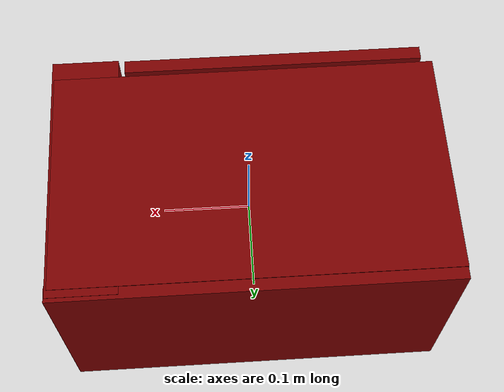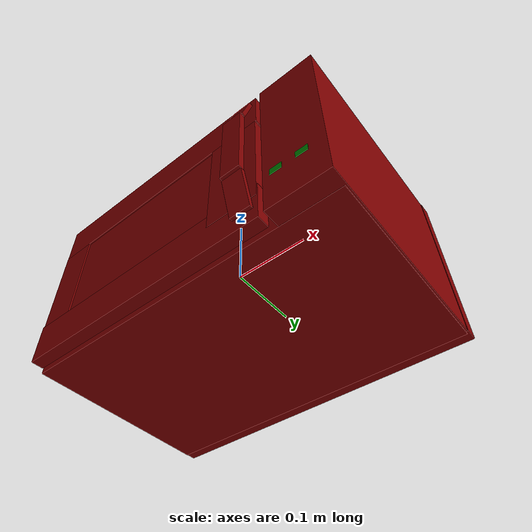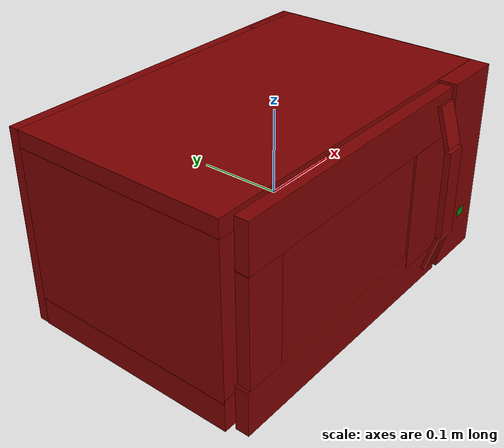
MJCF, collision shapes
<mujoco model="model">
  <compiler angle="radian"/>
  <asset>
    <mesh file="visuals/door.obj" name="door_vis"/>
    <mesh file="visuals/door_Clear.obj" name="door_Clear_vis"/>
    <mesh file="visuals/Body001.obj" name="Body001_vis"/>
    <mesh file="visuals/Disc001.obj" name="Disc001_vis"/>
    <texture file="visuals/T_BC001.png" name="Body001_material" type="2d"/>
    <material name="Body001_material" rgba="1 1 1 1.0" texture="Body001_material" shininess="0.4472135901451111" specular="0.3103448502657381"/>
    <texture file="visuals/T_BC001.png" name="door_material" type="2d"/>
    <material name="door_material" rgba="1 1 1 1.0" texture="door_material" shininess="0.4472135901451111" specular="0.3103448502657381"/>
    <material name="door_Clear_material" rgba="0.057967204600572586 0.057967204600572586 0.057967204600572586 0.800000011920929" shininess="0.5" specular="0.3103448502657381"/>
    <texture file="visuals/T_BC001.png" name="Disc001_material" type="2d"/>
    <material name="Disc001_material" rgba="1 1 1 1.0" texture="Disc001_material" shininess="0.4472135901451111" specular="0.3103448502657381"/>
  </asset>
  <default>
    <default class="visual">
      <geom conaffinity="0" contype="0" group="1" type="mesh"/>
    </default>
    <default class="collision">
      <geom group="0" rgba="0.5 0 0 0.5"/>
    </default>
    <default class="spawn">
      <geom group="0" rgba="1 1 1 0.5" contype="0" conaffinity="0"/>
      <site group="0" rgba="1 1 1 0.5"/>
    </default>
    <default class="region">
      <geom group="1" conaffinity="0" contype="0" rgba="0 1 0 0"/>
    </default>
  </default>
  <worldbody>
    <body>
      <body name="object">
        <geom class="collision" type="box" pos="-0.037737078964710236 0.009226525202393532 -0.06830118596553802" size="0.1076723113656044 0.1076723113656044 0.0010420548496767879" quat="1.0 0.0 0.0 0.0" name="tray" rgba="0 1 0 0.5"/>
        <geom class="collision" type="box" pos="0.15809373557567596 -0.13708043098449707 -0.06348935514688492" size="0.007441242691129446 0.00021926913177594543 0.004784209653735161" quat="1.0 0.0 0.0 0.0" name="start_button" rgba="0.0 0.5 0 0.5"/>
        <geom class="collision" type="box" pos="0.1888430118560791 -0.13710257411003113 -0.06348935514688492" size="0.007441242691129446 0.00021926956833340228 0.004784199874848127" quat="1.0 0.0 0.0 0.0" name="stop_button" rgba="0.0 0.5 0 0.5"/>
        <geom mesh="Body001_vis" type="mesh" solimp="0.998 0.998 0.001" solref="0.001 1" density="100" friction="0.95 0.3 0.1" class="visual" material="Body001_material"/>
        <geom class="collision" type="box" pos="-0.0016706602182239294 0.013973010703921318 0.10778217762708664" size="0.21619108319282532 0.12820884585380554 0.010077619925141335" quat="1.0 0.0 0.0 0.0"/>
        <geom class="collision" type="box" pos="-0.1957019865512848 0.014164597727358341 0.006985480897128582" size="0.022196460515260696 0.12801726162433624 0.09100154787302017" quat="1.0 0.0 0.0 0.0"/>
        <geom class="collision" type="box" pos="-0.0016174048651009798 0.014088875614106655 -0.09877132624387741" size="0.2161378413438797 0.12809297442436218 0.01940668188035488" quat="1.0 0.0 0.0 0.0"/>
        <geom class="collision" type="box" pos="0.17913708090782166 0.007099906448274851 -8.116441313177347e-05" size="0.037619415670633316 0.1437387466430664 0.11745566129684448" quat="1.0 0.0 0.0 0.0"/>
        <geom class="collision" type="box" pos="3.980088513344526e-05 0.1464567482471466 -0.00041684822645038366" size="0.21739667654037476 0.009070155210793018 0.11748406291007996" quat="1.0 0.0 0.0 0.0"/>
        <geom class="collision" type="box" pos="0.13246116042137146 0.012524663470685482 -0.00017196021508425474" size="0.03749297186732292 0.12585686147212982 0.1173618882894516" quat="1.0 0.0 0.0 0.0"/>
        <body name="door">
          <joint axis="0.0 0.0 1.0" pos="-0.20468606054782867 -0.13012300431728363 1.4901161193847656e-08" limited="true" name="microjoint" range="-1.5707963267948966 0.0" type="hinge" damping="1" frictionloss="1" armature=".01" stiffness="0.05"/>
          <geom mesh="door_vis" type="mesh" solimp="0.998 0.998 0.001" solref="0.001 1" density="100" friction="0.95 0.3 0.1" class="visual" material="door_material"/>
          <geom class="collision" type="box" pos="-0.03571535274386406 -0.12750782072544098 0.09001263976097107" size="0.1701129525899887 0.007771938107907772 0.027525795623660088" quat="1.0 0.0 0.0 0.0"/>
          <geom class="collision" type="box" pos="0.11575847119092941 -0.15306873619556427 0.0022253389470279217" size="0.012540368363261223 0.003927756566554308 0.05409396439790726" quat="1.0 0.0 0.0 0.0" name="door_handle"/>
          <geom class="collision" type="box" pos="0.11623413860797882 -0.14425913989543915 0.08200332522392273" size="0.012803062796592712 0.0026233333628624678 0.02456529065966606" quat="0.989936888217926 -0.14150944352149963 3.142147465434142e-17 -3.075643684307054e-25"/>
          <geom class="collision" type="box" pos="0.11623413860797882 -0.14489364624023438 -0.07719866186380386" size="0.012803062796592712 0.0026233333628624678 0.02456529065966606" quat="0.989936888217926 0.14150944352149963 -3.142148788923122e-17 -1.7101289579397496e-24"/>
          <geom class="collision" type="box" pos="-0.037391021847724915 -0.12732329964637756 -0.09078848361968994" size="0.17178863286972046 0.007956395857036114 0.026753459125757217" quat="1.0 0.0 0.0 0.0"/>
          <geom class="collision" type="box" pos="-0.18322664499282837 -0.12765048444271088 -0.009602012112736702" size="0.02315114624798298 0.00762920081615448 0.07208721339702606" quat="1.0 0.0 0.0 0.0"/>
          <geom class="collision" type="box" pos="0.10024118423461914 -0.1277921497821808 -0.009602013044059277" size="0.032622188329696655 0.007733045611530542 0.07208732515573502" quat="1.0 0.0 0.0 0.0"/>
          <body name="door_Clear">
            <geom mesh="door_Clear_vis" type="mesh" solimp="0.998 0.998 0.001" solref="0.001 1" density="100" friction="0.95 0.3 0.1" class="visual" material="door_Clear_material"/>
            <geom class="collision" type="box" pos="-0.04662525653839111 -0.13189370930194855 -0.0014625671319663525" size="0.11842330545186996 0.0013311010552570224 0.06566796451807022" quat="1.0 0.0 0.0 0.0"/>
          </body>
        </body>
        <body name="Disc001">
          <joint axis="0.0 0.0 1.0" pos="-0.03668929636478424 0.011069685220718384 -0.07206994295120239" limited="false" name="Disc001_joint" range="0 360" type="hinge" damping="1" frictionloss="1" armature=".01" stiffness="0.05"/>
          <geom mesh="Disc001_vis" type="mesh" solimp="0.998 0.998 0.001" solref="0.001 1" density="100" friction="0.95 0.3 0.1" class="visual" material="Disc001_material"/>
          <geom class="collision" type="cylinder" pos="-0.037737078964710236 0.009226525202393532 -0.07427452504634857" size="0.10767586529254913 0.0005934006185270846" quat="1.0 0.0 0.0 0.0"/>
        </body>
        <geom class="region" name="reg_main" type="box" pos="0.0 0.0093783438205719 0.0" size="0.21834111213684082 0.1477479636669159 0.11833254992961884"/>
        <geom class="region" name="reg_int" type="box" pos="-0.03716424107551575 0.011676434427499771 0.003149263560771942" size="0.13331033289432526 0.12358268722891808 0.08147608488798141"/>
      </body>
    </body>
  </worldbody>
  <actuator>
    <motor name="microjoint_actuator" joint="microjoint" gear="10"/>
    <motor name="Disc001_joint_actuator" joint="Disc001_joint" gear="10"/>
  </actuator>
</mujoco>
